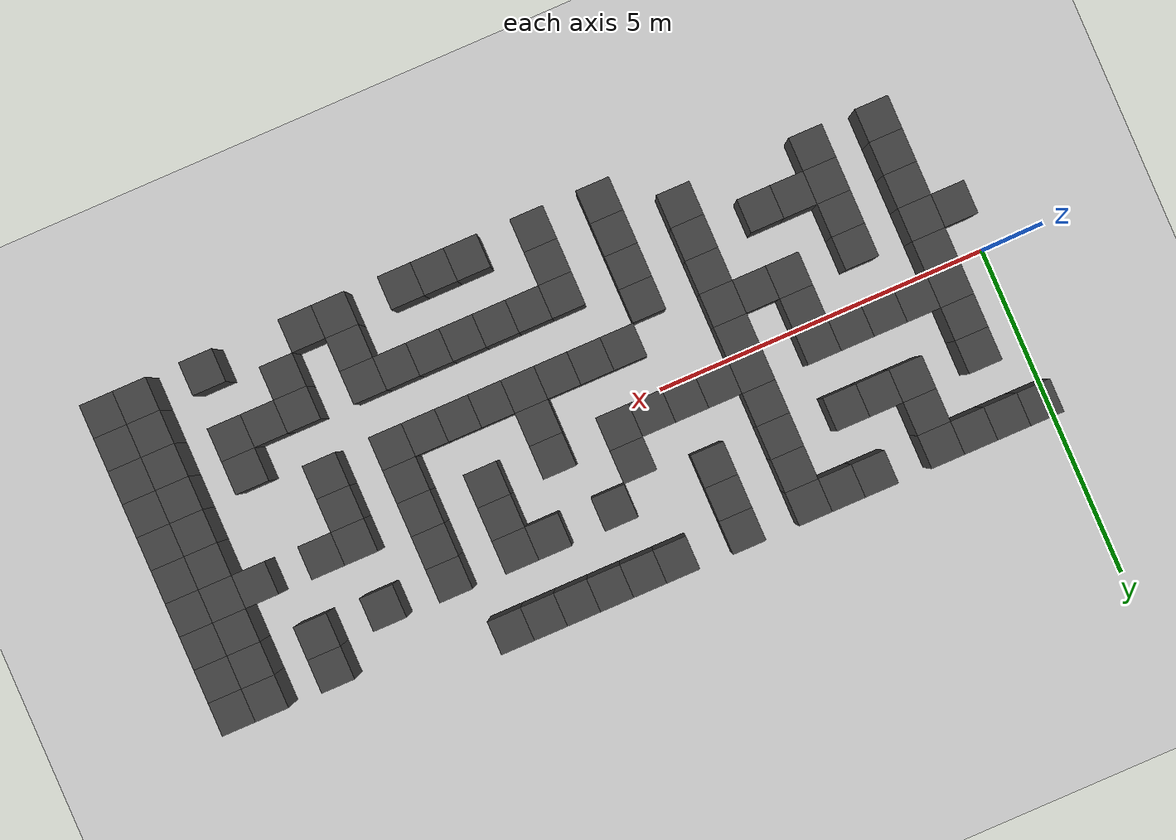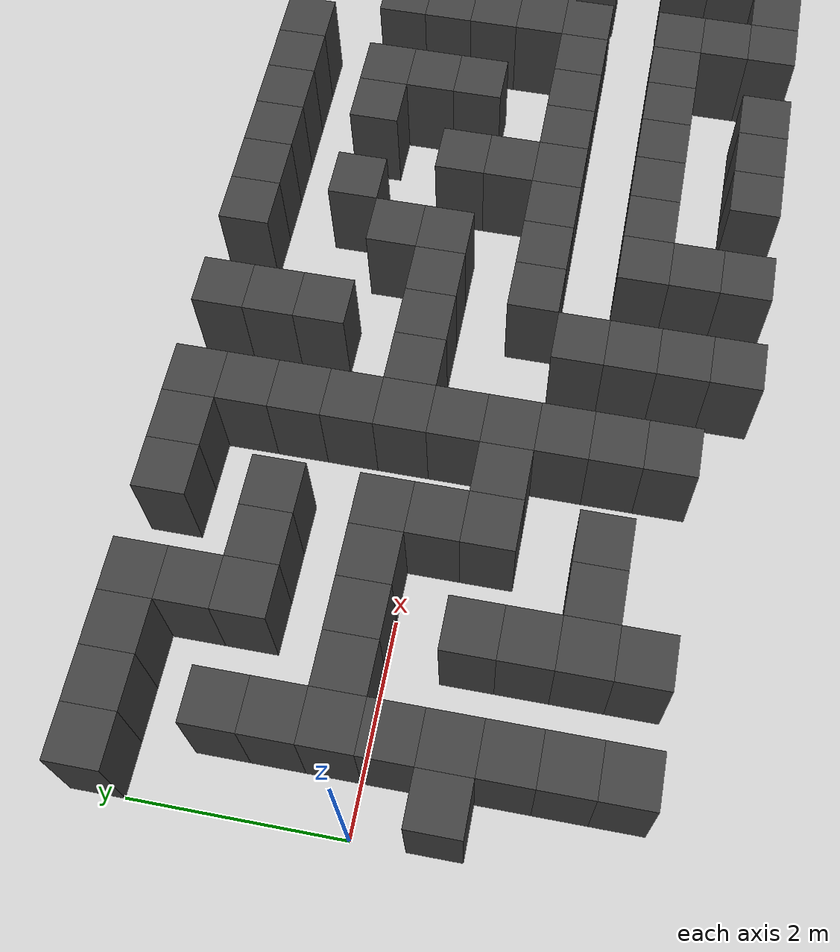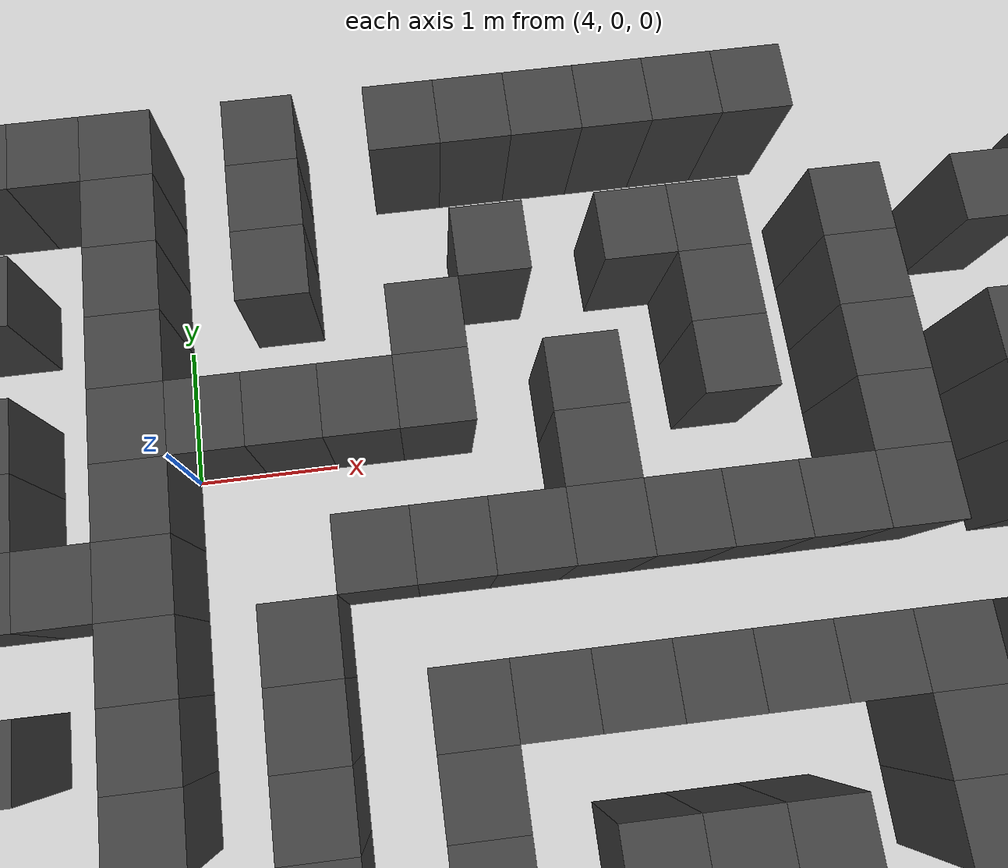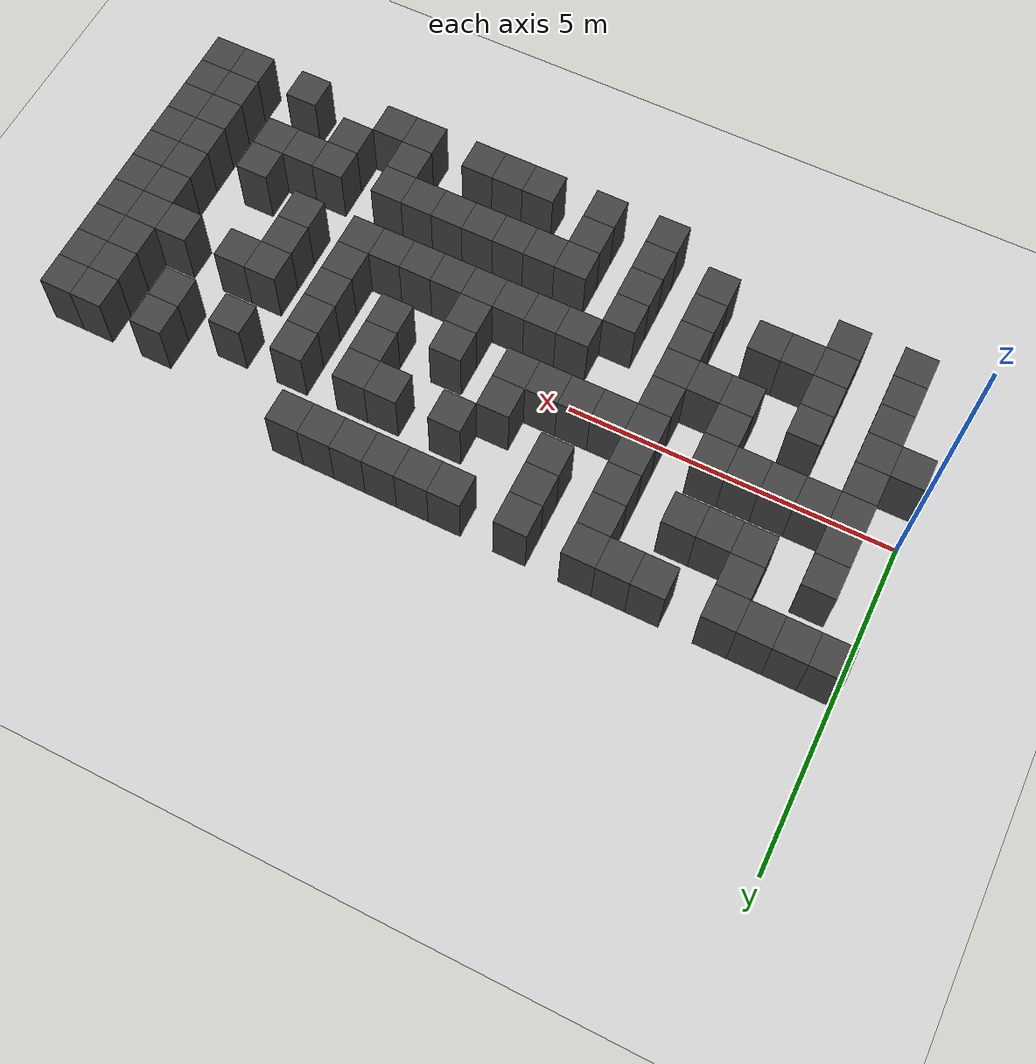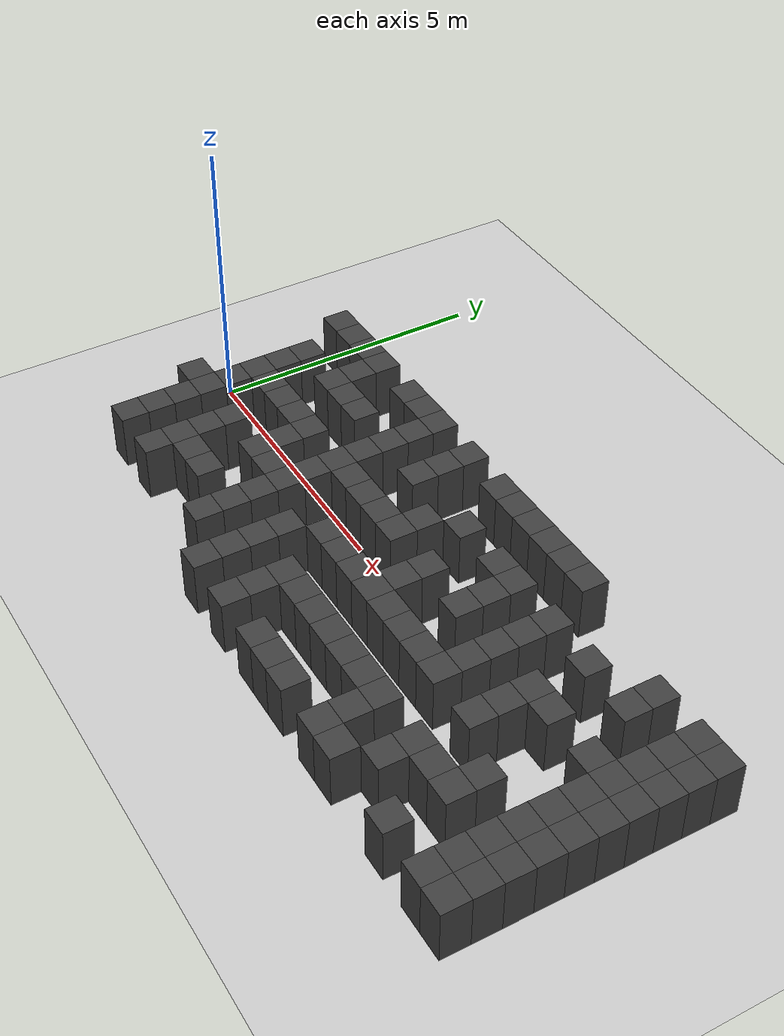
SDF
<sdf version="1.7">
 <world name="map_17503">
  <model name="ground_plane">
   <static>true</static>
   <link name="link">
    <collision name="collision">
     <geometry><plane><normal>0 0 1</normal><size>200 200</size></plane></geometry>
    </collision>
    <visual name="visual">
     <geometry><plane><normal>0 0 1</normal><size>200 200</size></plane></geometry>
     <material><ambient>0.8 0.8 0.8 1</ambient><diffuse>0.8 0.8 0.8 1</diffuse></material>
    </visual>
   </link>
  </model>
  <model name="maze_environment">
   <static>true</static>
   <link name="wall_511">
    <pose>0.250 2.250 0.500 0 0 0</pose>
    <collision name="col"><geometry><box><size>0.5 0.5 1.0</size></box></geometry></collision>
    <visual name="vis">
     <geometry><box><size>0.5 0.5 1.0</size></box></geometry>
     <material><ambient>0.15 0.15 0.15 1</ambient><diffuse>0.25 0.25 0.25 1</diffuse></material>
    </visual>
   </link>
   <link name="wall_512">
    <pose>0.750 2.250 0.500 0 0 0</pose>
    <collision name="col"><geometry><box><size>0.5 0.5 1.0</size></box></geometry></collision>
    <visual name="vis">
     <geometry><box><size>0.5 0.5 1.0</size></box></geometry>
     <material><ambient>0.15 0.15 0.15 1</ambient><diffuse>0.25 0.25 0.25 1</diffuse></material>
    </visual>
   </link>
   <link name="wall_513">
    <pose>1.250 2.250 0.500 0 0 0</pose>
    <collision name="col"><geometry><box><size>0.5 0.5 1.0</size></box></geometry></collision>
    <visual name="vis">
     <geometry><box><size>0.5 0.5 1.0</size></box></geometry>
     <material><ambient>0.15 0.15 0.15 1</ambient><diffuse>0.25 0.25 0.25 1</diffuse></material>
    </visual>
   </link>
   <link name="wall_514">
    <pose>1.750 2.250 0.500 0 0 0</pose>
    <collision name="col"><geometry><box><size>0.5 0.5 1.0</size></box></geometry></collision>
    <visual name="vis">
     <geometry><box><size>0.5 0.5 1.0</size></box></geometry>
     <material><ambient>0.15 0.15 0.15 1</ambient><diffuse>0.25 0.25 0.25 1</diffuse></material>
    </visual>
   </link>
   <link name="wall_515">
    <pose>2.750 2.250 0.500 0 0 0</pose>
    <collision name="col"><geometry><box><size>0.5 0.5 1.0</size></box></geometry></collision>
    <visual name="vis">
     <geometry><box><size>0.5 0.5 1.0</size></box></geometry>
     <material><ambient>0.15 0.15 0.15 1</ambient><diffuse>0.25 0.25 0.25 1</diffuse></material>
    </visual>
   </link>
   <link name="wall_516">
    <pose>3.250 2.250 0.500 0 0 0</pose>
    <collision name="col"><geometry><box><size>0.5 0.5 1.0</size></box></geometry></collision>
    <visual name="vis">
     <geometry><box><size>0.5 0.5 1.0</size></box></geometry>
     <material><ambient>0.15 0.15 0.15 1</ambient><diffuse>0.25 0.25 0.25 1</diffuse></material>
    </visual>
   </link>
   <link name="wall_517">
    <pose>3.750 2.250 0.500 0 0 0</pose>
    <collision name="col"><geometry><box><size>0.5 0.5 1.0</size></box></geometry></collision>
    <visual name="vis">
     <geometry><box><size>0.5 0.5 1.0</size></box></geometry>
     <material><ambient>0.15 0.15 0.15 1</ambient><diffuse>0.25 0.25 0.25 1</diffuse></material>
    </visual>
   </link>
   <link name="wall_518">
    <pose>4.750 2.250 0.500 0 0 0</pose>
    <collision name="col"><geometry><box><size>0.5 0.5 1.0</size></box></geometry></collision>
    <visual name="vis">
     <geometry><box><size>0.5 0.5 1.0</size></box></geometry>
     <material><ambient>0.15 0.15 0.15 1</ambient><diffuse>0.25 0.25 0.25 1</diffuse></material>
    </visual>
   </link>
   <link name="wall_519">
    <pose>5.750 2.250 0.500 0 0 0</pose>
    <collision name="col"><geometry><box><size>0.5 0.5 1.0</size></box></geometry></collision>
    <visual name="vis">
     <geometry><box><size>0.5 0.5 1.0</size></box></geometry>
     <material><ambient>0.15 0.15 0.15 1</ambient><diffuse>0.25 0.25 0.25 1</diffuse></material>
    </visual>
   </link>
   <link name="wall_520">
    <pose>6.250 2.250 0.500 0 0 0</pose>
    <collision name="col"><geometry><box><size>0.5 0.5 1.0</size></box></geometry></collision>
    <visual name="vis">
     <geometry><box><size>0.5 0.5 1.0</size></box></geometry>
     <material><ambient>0.15 0.15 0.15 1</ambient><diffuse>0.25 0.25 0.25 1</diffuse></material>
    </visual>
   </link>
   <link name="wall_521">
    <pose>6.750 2.250 0.500 0 0 0</pose>
    <collision name="col"><geometry><box><size>0.5 0.5 1.0</size></box></geometry></collision>
    <visual name="vis">
     <geometry><box><size>0.5 0.5 1.0</size></box></geometry>
     <material><ambient>0.15 0.15 0.15 1</ambient><diffuse>0.25 0.25 0.25 1</diffuse></material>
    </visual>
   </link>
   <link name="wall_522">
    <pose>7.250 2.250 0.500 0 0 0</pose>
    <collision name="col"><geometry><box><size>0.5 0.5 1.0</size></box></geometry></collision>
    <visual name="vis">
     <geometry><box><size>0.5 0.5 1.0</size></box></geometry>
     <material><ambient>0.15 0.15 0.15 1</ambient><diffuse>0.25 0.25 0.25 1</diffuse></material>
    </visual>
   </link>
   <link name="wall_523">
    <pose>7.750 2.250 0.500 0 0 0</pose>
    <collision name="col"><geometry><box><size>0.5 0.5 1.0</size></box></geometry></collision>
    <visual name="vis">
     <geometry><box><size>0.5 0.5 1.0</size></box></geometry>
     <material><ambient>0.15 0.15 0.15 1</ambient><diffuse>0.25 0.25 0.25 1</diffuse></material>
    </visual>
   </link>
   <link name="wall_524">
    <pose>8.250 2.250 0.500 0 0 0</pose>
    <collision name="col"><geometry><box><size>0.5 0.5 1.0</size></box></geometry></collision>
    <visual name="vis">
     <geometry><box><size>0.5 0.5 1.0</size></box></geometry>
     <material><ambient>0.15 0.15 0.15 1</ambient><diffuse>0.25 0.25 0.25 1</diffuse></material>
    </visual>
   </link>
   <link name="wall_540">
    <pose>1.750 1.750 0.500 0 0 0</pose>
    <collision name="col"><geometry><box><size>0.5 0.5 1.0</size></box></geometry></collision>
    <visual name="vis">
     <geometry><box><size>0.5 0.5 1.0</size></box></geometry>
     <material><ambient>0.15 0.15 0.15 1</ambient><diffuse>0.25 0.25 0.25 1</diffuse></material>
    </visual>
   </link>
   <link name="wall_541">
    <pose>3.750 1.750 0.500 0 0 0</pose>
    <collision name="col"><geometry><box><size>0.5 0.5 1.0</size></box></geometry></collision>
    <visual name="vis">
     <geometry><box><size>0.5 0.5 1.0</size></box></geometry>
     <material><ambient>0.15 0.15 0.15 1</ambient><diffuse>0.25 0.25 0.25 1</diffuse></material>
    </visual>
   </link>
   <link name="wall_542">
    <pose>4.750 1.750 0.500 0 0 0</pose>
    <collision name="col"><geometry><box><size>0.5 0.5 1.0</size></box></geometry></collision>
    <visual name="vis">
     <geometry><box><size>0.5 0.5 1.0</size></box></geometry>
     <material><ambient>0.15 0.15 0.15 1</ambient><diffuse>0.25 0.25 0.25 1</diffuse></material>
    </visual>
   </link>
   <link name="wall_543">
    <pose>10.750 1.750 0.500 0 0 0</pose>
    <collision name="col"><geometry><box><size>0.5 0.5 1.0</size></box></geometry></collision>
    <visual name="vis">
     <geometry><box><size>0.5 0.5 1.0</size></box></geometry>
     <material><ambient>0.15 0.15 0.15 1</ambient><diffuse>0.25 0.25 0.25 1</diffuse></material>
    </visual>
   </link>
   <link name="wall_544">
    <pose>11.750 1.750 0.500 0 0 0</pose>
    <collision name="col"><geometry><box><size>0.5 0.5 1.0</size></box></geometry></collision>
    <visual name="vis">
     <geometry><box><size>0.5 0.5 1.0</size></box></geometry>
     <material><ambient>0.15 0.15 0.15 1</ambient><diffuse>0.25 0.25 0.25 1</diffuse></material>
    </visual>
   </link>
   <link name="wall_545">
    <pose>12.250 1.750 0.500 0 0 0</pose>
    <collision name="col"><geometry><box><size>0.5 0.5 1.0</size></box></geometry></collision>
    <visual name="vis">
     <geometry><box><size>0.5 0.5 1.0</size></box></geometry>
     <material><ambient>0.15 0.15 0.15 1</ambient><diffuse>0.25 0.25 0.25 1</diffuse></material>
    </visual>
   </link>
   <link name="wall_562">
    <pose>0.750 1.250 0.500 0 0 0</pose>
    <collision name="col"><geometry><box><size>0.5 0.5 1.0</size></box></geometry></collision>
    <visual name="vis">
     <geometry><box><size>0.5 0.5 1.0</size></box></geometry>
     <material><ambient>0.15 0.15 0.15 1</ambient><diffuse>0.25 0.25 0.25 1</diffuse></material>
    </visual>
   </link>
   <link name="wall_563">
    <pose>1.750 1.250 0.500 0 0 0</pose>
    <collision name="col"><geometry><box><size>0.5 0.5 1.0</size></box></geometry></collision>
    <visual name="vis">
     <geometry><box><size>0.5 0.5 1.0</size></box></geometry>
     <material><ambient>0.15 0.15 0.15 1</ambient><diffuse>0.25 0.25 0.25 1</diffuse></material>
    </visual>
   </link>
   <link name="wall_564">
    <pose>2.250 1.250 0.500 0 0 0</pose>
    <collision name="col"><geometry><box><size>0.5 0.5 1.0</size></box></geometry></collision>
    <visual name="vis">
     <geometry><box><size>0.5 0.5 1.0</size></box></geometry>
     <material><ambient>0.15 0.15 0.15 1</ambient><diffuse>0.25 0.25 0.25 1</diffuse></material>
    </visual>
   </link>
   <link name="wall_565">
    <pose>2.750 1.250 0.500 0 0 0</pose>
    <collision name="col"><geometry><box><size>0.5 0.5 1.0</size></box></geometry></collision>
    <visual name="vis">
     <geometry><box><size>0.5 0.5 1.0</size></box></geometry>
     <material><ambient>0.15 0.15 0.15 1</ambient><diffuse>0.25 0.25 0.25 1</diffuse></material>
    </visual>
   </link>
   <link name="wall_566">
    <pose>3.750 1.250 0.500 0 0 0</pose>
    <collision name="col"><geometry><box><size>0.5 0.5 1.0</size></box></geometry></collision>
    <visual name="vis">
     <geometry><box><size>0.5 0.5 1.0</size></box></geometry>
     <material><ambient>0.15 0.15 0.15 1</ambient><diffuse>0.25 0.25 0.25 1</diffuse></material>
    </visual>
   </link>
   <link name="wall_567">
    <pose>4.750 1.250 0.500 0 0 0</pose>
    <collision name="col"><geometry><box><size>0.5 0.5 1.0</size></box></geometry></collision>
    <visual name="vis">
     <geometry><box><size>0.5 0.5 1.0</size></box></geometry>
     <material><ambient>0.15 0.15 0.15 1</ambient><diffuse>0.25 0.25 0.25 1</diffuse></material>
    </visual>
   </link>
   <link name="wall_568">
    <pose>6.250 1.250 0.500 0 0 0</pose>
    <collision name="col"><geometry><box><size>0.5 0.5 1.0</size></box></geometry></collision>
    <visual name="vis">
     <geometry><box><size>0.5 0.5 1.0</size></box></geometry>
     <material><ambient>0.15 0.15 0.15 1</ambient><diffuse>0.25 0.25 0.25 1</diffuse></material>
    </visual>
   </link>
   <link name="wall_569">
    <pose>7.250 1.250 0.500 0 0 0</pose>
    <collision name="col"><geometry><box><size>0.5 0.5 1.0</size></box></geometry></collision>
    <visual name="vis">
     <geometry><box><size>0.5 0.5 1.0</size></box></geometry>
     <material><ambient>0.15 0.15 0.15 1</ambient><diffuse>0.25 0.25 0.25 1</diffuse></material>
    </visual>
   </link>
   <link name="wall_570">
    <pose>7.750 1.250 0.500 0 0 0</pose>
    <collision name="col"><geometry><box><size>0.5 0.5 1.0</size></box></geometry></collision>
    <visual name="vis">
     <geometry><box><size>0.5 0.5 1.0</size></box></geometry>
     <material><ambient>0.15 0.15 0.15 1</ambient><diffuse>0.25 0.25 0.25 1</diffuse></material>
    </visual>
   </link>
   <link name="wall_571">
    <pose>8.750 1.250 0.500 0 0 0</pose>
    <collision name="col"><geometry><box><size>0.5 0.5 1.0</size></box></geometry></collision>
    <visual name="vis">
     <geometry><box><size>0.5 0.5 1.0</size></box></geometry>
     <material><ambient>0.15 0.15 0.15 1</ambient><diffuse>0.25 0.25 0.25 1</diffuse></material>
    </visual>
   </link>
   <link name="wall_572">
    <pose>9.750 1.250 0.500 0 0 0</pose>
    <collision name="col"><geometry><box><size>0.5 0.5 1.0</size></box></geometry></collision>
    <visual name="vis">
     <geometry><box><size>0.5 0.5 1.0</size></box></geometry>
     <material><ambient>0.15 0.15 0.15 1</ambient><diffuse>0.25 0.25 0.25 1</diffuse></material>
    </visual>
   </link>
   <link name="wall_573">
    <pose>10.750 1.250 0.500 0 0 0</pose>
    <collision name="col"><geometry><box><size>0.5 0.5 1.0</size></box></geometry></collision>
    <visual name="vis">
     <geometry><box><size>0.5 0.5 1.0</size></box></geometry>
     <material><ambient>0.15 0.15 0.15 1</ambient><diffuse>0.25 0.25 0.25 1</diffuse></material>
    </visual>
   </link>
   <link name="wall_574">
    <pose>11.750 1.250 0.500 0 0 0</pose>
    <collision name="col"><geometry><box><size>0.5 0.5 1.0</size></box></geometry></collision>
    <visual name="vis">
     <geometry><box><size>0.5 0.5 1.0</size></box></geometry>
     <material><ambient>0.15 0.15 0.15 1</ambient><diffuse>0.25 0.25 0.25 1</diffuse></material>
    </visual>
   </link>
   <link name="wall_575">
    <pose>12.250 1.250 0.500 0 0 0</pose>
    <collision name="col"><geometry><box><size>0.5 0.5 1.0</size></box></geometry></collision>
    <visual name="vis">
     <geometry><box><size>0.5 0.5 1.0</size></box></geometry>
     <material><ambient>0.15 0.15 0.15 1</ambient><diffuse>0.25 0.25 0.25 1</diffuse></material>
    </visual>
   </link>
   <link name="wall_584">
    <pose>0.750 0.750 0.500 0 0 0</pose>
    <collision name="col"><geometry><box><size>0.5 0.5 1.0</size></box></geometry></collision>
    <visual name="vis">
     <geometry><box><size>0.5 0.5 1.0</size></box></geometry>
     <material><ambient>0.15 0.15 0.15 1</ambient><diffuse>0.25 0.25 0.25 1</diffuse></material>
    </visual>
   </link>
   <link name="wall_585">
    <pose>3.750 0.750 0.500 0 0 0</pose>
    <collision name="col"><geometry><box><size>0.5 0.5 1.0</size></box></geometry></collision>
    <visual name="vis">
     <geometry><box><size>0.5 0.5 1.0</size></box></geometry>
     <material><ambient>0.15 0.15 0.15 1</ambient><diffuse>0.25 0.25 0.25 1</diffuse></material>
    </visual>
   </link>
   <link name="wall_586">
    <pose>5.750 0.750 0.500 0 0 0</pose>
    <collision name="col"><geometry><box><size>0.5 0.5 1.0</size></box></geometry></collision>
    <visual name="vis">
     <geometry><box><size>0.5 0.5 1.0</size></box></geometry>
     <material><ambient>0.15 0.15 0.15 1</ambient><diffuse>0.25 0.25 0.25 1</diffuse></material>
    </visual>
   </link>
   <link name="wall_587">
    <pose>7.750 0.750 0.500 0 0 0</pose>
    <collision name="col"><geometry><box><size>0.5 0.5 1.0</size></box></geometry></collision>
    <visual name="vis">
     <geometry><box><size>0.5 0.5 1.0</size></box></geometry>
     <material><ambient>0.15 0.15 0.15 1</ambient><diffuse>0.25 0.25 0.25 1</diffuse></material>
    </visual>
   </link>
   <link name="wall_588">
    <pose>8.750 0.750 0.500 0 0 0</pose>
    <collision name="col"><geometry><box><size>0.5 0.5 1.0</size></box></geometry></collision>
    <visual name="vis">
     <geometry><box><size>0.5 0.5 1.0</size></box></geometry>
     <material><ambient>0.15 0.15 0.15 1</ambient><diffuse>0.25 0.25 0.25 1</diffuse></material>
    </visual>
   </link>
   <link name="wall_589">
    <pose>11.750 0.750 0.500 0 0 0</pose>
    <collision name="col"><geometry><box><size>0.5 0.5 1.0</size></box></geometry></collision>
    <visual name="vis">
     <geometry><box><size>0.5 0.5 1.0</size></box></geometry>
     <material><ambient>0.15 0.15 0.15 1</ambient><diffuse>0.25 0.25 0.25 1</diffuse></material>
    </visual>
   </link>
   <link name="wall_590">
    <pose>12.250 0.750 0.500 0 0 0</pose>
    <collision name="col"><geometry><box><size>0.5 0.5 1.0</size></box></geometry></collision>
    <visual name="vis">
     <geometry><box><size>0.5 0.5 1.0</size></box></geometry>
     <material><ambient>0.15 0.15 0.15 1</ambient><diffuse>0.25 0.25 0.25 1</diffuse></material>
    </visual>
   </link>
   <link name="wall_610">
    <pose>0.750 0.250 0.500 0 0 0</pose>
    <collision name="col"><geometry><box><size>0.5 0.5 1.0</size></box></geometry></collision>
    <visual name="vis">
     <geometry><box><size>0.5 0.5 1.0</size></box></geometry>
     <material><ambient>0.15 0.15 0.15 1</ambient><diffuse>0.25 0.25 0.25 1</diffuse></material>
    </visual>
   </link>
   <link name="wall_611">
    <pose>1.250 0.250 0.500 0 0 0</pose>
    <collision name="col"><geometry><box><size>0.5 0.5 1.0</size></box></geometry></collision>
    <visual name="vis">
     <geometry><box><size>0.5 0.5 1.0</size></box></geometry>
     <material><ambient>0.15 0.15 0.15 1</ambient><diffuse>0.25 0.25 0.25 1</diffuse></material>
    </visual>
   </link>
   <link name="wall_612">
    <pose>1.750 0.250 0.500 0 0 0</pose>
    <collision name="col"><geometry><box><size>0.5 0.5 1.0</size></box></geometry></collision>
    <visual name="vis">
     <geometry><box><size>0.5 0.5 1.0</size></box></geometry>
     <material><ambient>0.15 0.15 0.15 1</ambient><diffuse>0.25 0.25 0.25 1</diffuse></material>
    </visual>
   </link>
   <link name="wall_613">
    <pose>2.250 0.250 0.500 0 0 0</pose>
    <collision name="col"><geometry><box><size>0.5 0.5 1.0</size></box></geometry></collision>
    <visual name="vis">
     <geometry><box><size>0.5 0.5 1.0</size></box></geometry>
     <material><ambient>0.15 0.15 0.15 1</ambient><diffuse>0.25 0.25 0.25 1</diffuse></material>
    </visual>
   </link>
   <link name="wall_614">
    <pose>2.750 0.250 0.500 0 0 0</pose>
    <collision name="col"><geometry><box><size>0.5 0.5 1.0</size></box></geometry></collision>
    <visual name="vis">
     <geometry><box><size>0.5 0.5 1.0</size></box></geometry>
     <material><ambient>0.15 0.15 0.15 1</ambient><diffuse>0.25 0.25 0.25 1</diffuse></material>
    </visual>
   </link>
   <link name="wall_615">
    <pose>3.750 0.250 0.500 0 0 0</pose>
    <collision name="col"><geometry><box><size>0.5 0.5 1.0</size></box></geometry></collision>
    <visual name="vis">
     <geometry><box><size>0.5 0.5 1.0</size></box></geometry>
     <material><ambient>0.15 0.15 0.15 1</ambient><diffuse>0.25 0.25 0.25 1</diffuse></material>
    </visual>
   </link>
   <link name="wall_616">
    <pose>4.250 0.250 0.500 0 0 0</pose>
    <collision name="col"><geometry><box><size>0.5 0.5 1.0</size></box></geometry></collision>
    <visual name="vis">
     <geometry><box><size>0.5 0.5 1.0</size></box></geometry>
     <material><ambient>0.15 0.15 0.15 1</ambient><diffuse>0.25 0.25 0.25 1</diffuse></material>
    </visual>
   </link>
   <link name="wall_617">
    <pose>4.750 0.250 0.500 0 0 0</pose>
    <collision name="col"><geometry><box><size>0.5 0.5 1.0</size></box></geometry></collision>
    <visual name="vis">
     <geometry><box><size>0.5 0.5 1.0</size></box></geometry>
     <material><ambient>0.15 0.15 0.15 1</ambient><diffuse>0.25 0.25 0.25 1</diffuse></material>
    </visual>
   </link>
   <link name="wall_618">
    <pose>5.250 0.250 0.500 0 0 0</pose>
    <collision name="col"><geometry><box><size>0.5 0.5 1.0</size></box></geometry></collision>
    <visual name="vis">
     <geometry><box><size>0.5 0.5 1.0</size></box></geometry>
     <material><ambient>0.15 0.15 0.15 1</ambient><diffuse>0.25 0.25 0.25 1</diffuse></material>
    </visual>
   </link>
   <link name="wall_619">
    <pose>5.750 0.250 0.500 0 0 0</pose>
    <collision name="col"><geometry><box><size>0.5 0.5 1.0</size></box></geometry></collision>
    <visual name="vis">
     <geometry><box><size>0.5 0.5 1.0</size></box></geometry>
     <material><ambient>0.15 0.15 0.15 1</ambient><diffuse>0.25 0.25 0.25 1</diffuse></material>
    </visual>
   </link>
   <link name="wall_620">
    <pose>6.750 0.250 0.500 0 0 0</pose>
    <collision name="col"><geometry><box><size>0.5 0.5 1.0</size></box></geometry></collision>
    <visual name="vis">
     <geometry><box><size>0.5 0.5 1.0</size></box></geometry>
     <material><ambient>0.15 0.15 0.15 1</ambient><diffuse>0.25 0.25 0.25 1</diffuse></material>
    </visual>
   </link>
   <link name="wall_621">
    <pose>7.750 0.250 0.500 0 0 0</pose>
    <collision name="col"><geometry><box><size>0.5 0.5 1.0</size></box></geometry></collision>
    <visual name="vis">
     <geometry><box><size>0.5 0.5 1.0</size></box></geometry>
     <material><ambient>0.15 0.15 0.15 1</ambient><diffuse>0.25 0.25 0.25 1</diffuse></material>
    </visual>
   </link>
   <link name="wall_622">
    <pose>8.750 0.250 0.500 0 0 0</pose>
    <collision name="col"><geometry><box><size>0.5 0.5 1.0</size></box></geometry></collision>
    <visual name="vis">
     <geometry><box><size>0.5 0.5 1.0</size></box></geometry>
     <material><ambient>0.15 0.15 0.15 1</ambient><diffuse>0.25 0.25 0.25 1</diffuse></material>
    </visual>
   </link>
   <link name="wall_623">
    <pose>9.750 0.250 0.500 0 0 0</pose>
    <collision name="col"><geometry><box><size>0.5 0.5 1.0</size></box></geometry></collision>
    <visual name="vis">
     <geometry><box><size>0.5 0.5 1.0</size></box></geometry>
     <material><ambient>0.15 0.15 0.15 1</ambient><diffuse>0.25 0.25 0.25 1</diffuse></material>
    </visual>
   </link>
   <link name="wall_624">
    <pose>10.250 0.250 0.500 0 0 0</pose>
    <collision name="col"><geometry><box><size>0.5 0.5 1.0</size></box></geometry></collision>
    <visual name="vis">
     <geometry><box><size>0.5 0.5 1.0</size></box></geometry>
     <material><ambient>0.15 0.15 0.15 1</ambient><diffuse>0.25 0.25 0.25 1</diffuse></material>
    </visual>
   </link>
   <link name="wall_625">
    <pose>11.250 0.250 0.500 0 0 0</pose>
    <collision name="col"><geometry><box><size>0.5 0.5 1.0</size></box></geometry></collision>
    <visual name="vis">
     <geometry><box><size>0.5 0.5 1.0</size></box></geometry>
     <material><ambient>0.15 0.15 0.15 1</ambient><diffuse>0.25 0.25 0.25 1</diffuse></material>
    </visual>
   </link>
   <link name="wall_626">
    <pose>11.750 0.250 0.500 0 0 0</pose>
    <collision name="col"><geometry><box><size>0.5 0.5 1.0</size></box></geometry></collision>
    <visual name="vis">
     <geometry><box><size>0.5 0.5 1.0</size></box></geometry>
     <material><ambient>0.15 0.15 0.15 1</ambient><diffuse>0.25 0.25 0.25 1</diffuse></material>
    </visual>
   </link>
   <link name="wall_627">
    <pose>12.250 0.250 0.500 0 0 0</pose>
    <collision name="col"><geometry><box><size>0.5 0.5 1.0</size></box></geometry></collision>
    <visual name="vis">
     <geometry><box><size>0.5 0.5 1.0</size></box></geometry>
     <material><ambient>0.15 0.15 0.15 1</ambient><diffuse>0.25 0.25 0.25 1</diffuse></material>
    </visual>
   </link>
   <link name="wall_635">
    <pose>0.750 -0.250 0.500 0 0 0</pose>
    <collision name="col"><geometry><box><size>0.5 0.5 1.0</size></box></geometry></collision>
    <visual name="vis">
     <geometry><box><size>0.5 0.5 1.0</size></box></geometry>
     <material><ambient>0.15 0.15 0.15 1</ambient><diffuse>0.25 0.25 0.25 1</diffuse></material>
    </visual>
   </link>
   <link name="wall_636">
    <pose>2.750 -0.250 0.500 0 0 0</pose>
    <collision name="col"><geometry><box><size>0.5 0.5 1.0</size></box></geometry></collision>
    <visual name="vis">
     <geometry><box><size>0.5 0.5 1.0</size></box></geometry>
     <material><ambient>0.15 0.15 0.15 1</ambient><diffuse>0.25 0.25 0.25 1</diffuse></material>
    </visual>
   </link>
   <link name="wall_637">
    <pose>3.750 -0.250 0.500 0 0 0</pose>
    <collision name="col"><geometry><box><size>0.5 0.5 1.0</size></box></geometry></collision>
    <visual name="vis">
     <geometry><box><size>0.5 0.5 1.0</size></box></geometry>
     <material><ambient>0.15 0.15 0.15 1</ambient><diffuse>0.25 0.25 0.25 1</diffuse></material>
    </visual>
   </link>
   <link name="wall_638">
    <pose>6.750 -0.250 0.500 0 0 0</pose>
    <collision name="col"><geometry><box><size>0.5 0.5 1.0</size></box></geometry></collision>
    <visual name="vis">
     <geometry><box><size>0.5 0.5 1.0</size></box></geometry>
     <material><ambient>0.15 0.15 0.15 1</ambient><diffuse>0.25 0.25 0.25 1</diffuse></material>
    </visual>
   </link>
   <link name="wall_639">
    <pose>8.750 -0.250 0.500 0 0 0</pose>
    <collision name="col"><geometry><box><size>0.5 0.5 1.0</size></box></geometry></collision>
    <visual name="vis">
     <geometry><box><size>0.5 0.5 1.0</size></box></geometry>
     <material><ambient>0.15 0.15 0.15 1</ambient><diffuse>0.25 0.25 0.25 1</diffuse></material>
    </visual>
   </link>
   <link name="wall_640">
    <pose>9.750 -0.250 0.500 0 0 0</pose>
    <collision name="col"><geometry><box><size>0.5 0.5 1.0</size></box></geometry></collision>
    <visual name="vis">
     <geometry><box><size>0.5 0.5 1.0</size></box></geometry>
     <material><ambient>0.15 0.15 0.15 1</ambient><diffuse>0.25 0.25 0.25 1</diffuse></material>
    </visual>
   </link>
   <link name="wall_641">
    <pose>11.750 -0.250 0.500 0 0 0</pose>
    <collision name="col"><geometry><box><size>0.5 0.5 1.0</size></box></geometry></collision>
    <visual name="vis">
     <geometry><box><size>0.5 0.5 1.0</size></box></geometry>
     <material><ambient>0.15 0.15 0.15 1</ambient><diffuse>0.25 0.25 0.25 1</diffuse></material>
    </visual>
   </link>
   <link name="wall_642">
    <pose>12.250 -0.250 0.500 0 0 0</pose>
    <collision name="col"><geometry><box><size>0.5 0.5 1.0</size></box></geometry></collision>
    <visual name="vis">
     <geometry><box><size>0.5 0.5 1.0</size></box></geometry>
     <material><ambient>0.15 0.15 0.15 1</ambient><diffuse>0.25 0.25 0.25 1</diffuse></material>
    </visual>
   </link>
   <link name="wall_660">
    <pose>0.250 -0.750 0.500 0 0 0</pose>
    <collision name="col"><geometry><box><size>0.5 0.5 1.0</size></box></geometry></collision>
    <visual name="vis">
     <geometry><box><size>0.5 0.5 1.0</size></box></geometry>
     <material><ambient>0.15 0.15 0.15 1</ambient><diffuse>0.25 0.25 0.25 1</diffuse></material>
    </visual>
   </link>
   <link name="wall_661">
    <pose>0.750 -0.750 0.500 0 0 0</pose>
    <collision name="col"><geometry><box><size>0.5 0.5 1.0</size></box></geometry></collision>
    <visual name="vis">
     <geometry><box><size>0.5 0.5 1.0</size></box></geometry>
     <material><ambient>0.15 0.15 0.15 1</ambient><diffuse>0.25 0.25 0.25 1</diffuse></material>
    </visual>
   </link>
   <link name="wall_662">
    <pose>1.750 -0.750 0.500 0 0 0</pose>
    <collision name="col"><geometry><box><size>0.5 0.5 1.0</size></box></geometry></collision>
    <visual name="vis">
     <geometry><box><size>0.5 0.5 1.0</size></box></geometry>
     <material><ambient>0.15 0.15 0.15 1</ambient><diffuse>0.25 0.25 0.25 1</diffuse></material>
    </visual>
   </link>
   <link name="wall_663">
    <pose>2.750 -0.750 0.500 0 0 0</pose>
    <collision name="col"><geometry><box><size>0.5 0.5 1.0</size></box></geometry></collision>
    <visual name="vis">
     <geometry><box><size>0.5 0.5 1.0</size></box></geometry>
     <material><ambient>0.15 0.15 0.15 1</ambient><diffuse>0.25 0.25 0.25 1</diffuse></material>
    </visual>
   </link>
   <link name="wall_664">
    <pose>3.250 -0.750 0.500 0 0 0</pose>
    <collision name="col"><geometry><box><size>0.5 0.5 1.0</size></box></geometry></collision>
    <visual name="vis">
     <geometry><box><size>0.5 0.5 1.0</size></box></geometry>
     <material><ambient>0.15 0.15 0.15 1</ambient><diffuse>0.25 0.25 0.25 1</diffuse></material>
    </visual>
   </link>
   <link name="wall_665">
    <pose>3.750 -0.750 0.500 0 0 0</pose>
    <collision name="col"><geometry><box><size>0.5 0.5 1.0</size></box></geometry></collision>
    <visual name="vis">
     <geometry><box><size>0.5 0.5 1.0</size></box></geometry>
     <material><ambient>0.15 0.15 0.15 1</ambient><diffuse>0.25 0.25 0.25 1</diffuse></material>
    </visual>
   </link>
   <link name="wall_666">
    <pose>5.250 -0.750 0.500 0 0 0</pose>
    <collision name="col"><geometry><box><size>0.5 0.5 1.0</size></box></geometry></collision>
    <visual name="vis">
     <geometry><box><size>0.5 0.5 1.0</size></box></geometry>
     <material><ambient>0.15 0.15 0.15 1</ambient><diffuse>0.25 0.25 0.25 1</diffuse></material>
    </visual>
   </link>
   <link name="wall_667">
    <pose>5.750 -0.750 0.500 0 0 0</pose>
    <collision name="col"><geometry><box><size>0.5 0.5 1.0</size></box></geometry></collision>
    <visual name="vis">
     <geometry><box><size>0.5 0.5 1.0</size></box></geometry>
     <material><ambient>0.15 0.15 0.15 1</ambient><diffuse>0.25 0.25 0.25 1</diffuse></material>
    </visual>
   </link>
   <link name="wall_668">
    <pose>6.250 -0.750 0.500 0 0 0</pose>
    <collision name="col"><geometry><box><size>0.5 0.5 1.0</size></box></geometry></collision>
    <visual name="vis">
     <geometry><box><size>0.5 0.5 1.0</size></box></geometry>
     <material><ambient>0.15 0.15 0.15 1</ambient><diffuse>0.25 0.25 0.25 1</diffuse></material>
    </visual>
   </link>
   <link name="wall_669">
    <pose>6.750 -0.750 0.500 0 0 0</pose>
    <collision name="col"><geometry><box><size>0.5 0.5 1.0</size></box></geometry></collision>
    <visual name="vis">
     <geometry><box><size>0.5 0.5 1.0</size></box></geometry>
     <material><ambient>0.15 0.15 0.15 1</ambient><diffuse>0.25 0.25 0.25 1</diffuse></material>
    </visual>
   </link>
   <link name="wall_670">
    <pose>7.250 -0.750 0.500 0 0 0</pose>
    <collision name="col"><geometry><box><size>0.5 0.5 1.0</size></box></geometry></collision>
    <visual name="vis">
     <geometry><box><size>0.5 0.5 1.0</size></box></geometry>
     <material><ambient>0.15 0.15 0.15 1</ambient><diffuse>0.25 0.25 0.25 1</diffuse></material>
    </visual>
   </link>
   <link name="wall_671">
    <pose>7.750 -0.750 0.500 0 0 0</pose>
    <collision name="col"><geometry><box><size>0.5 0.5 1.0</size></box></geometry></collision>
    <visual name="vis">
     <geometry><box><size>0.5 0.5 1.0</size></box></geometry>
     <material><ambient>0.15 0.15 0.15 1</ambient><diffuse>0.25 0.25 0.25 1</diffuse></material>
    </visual>
   </link>
   <link name="wall_672">
    <pose>8.250 -0.750 0.500 0 0 0</pose>
    <collision name="col"><geometry><box><size>0.5 0.5 1.0</size></box></geometry></collision>
    <visual name="vis">
     <geometry><box><size>0.5 0.5 1.0</size></box></geometry>
     <material><ambient>0.15 0.15 0.15 1</ambient><diffuse>0.25 0.25 0.25 1</diffuse></material>
    </visual>
   </link>
   <link name="wall_673">
    <pose>8.750 -0.750 0.500 0 0 0</pose>
    <collision name="col"><geometry><box><size>0.5 0.5 1.0</size></box></geometry></collision>
    <visual name="vis">
     <geometry><box><size>0.5 0.5 1.0</size></box></geometry>
     <material><ambient>0.15 0.15 0.15 1</ambient><diffuse>0.25 0.25 0.25 1</diffuse></material>
    </visual>
   </link>
   <link name="wall_674">
    <pose>9.750 -0.750 0.500 0 0 0</pose>
    <collision name="col"><geometry><box><size>0.5 0.5 1.0</size></box></geometry></collision>
    <visual name="vis">
     <geometry><box><size>0.5 0.5 1.0</size></box></geometry>
     <material><ambient>0.15 0.15 0.15 1</ambient><diffuse>0.25 0.25 0.25 1</diffuse></material>
    </visual>
   </link>
   <link name="wall_675">
    <pose>11.750 -0.750 0.500 0 0 0</pose>
    <collision name="col"><geometry><box><size>0.5 0.5 1.0</size></box></geometry></collision>
    <visual name="vis">
     <geometry><box><size>0.5 0.5 1.0</size></box></geometry>
     <material><ambient>0.15 0.15 0.15 1</ambient><diffuse>0.25 0.25 0.25 1</diffuse></material>
    </visual>
   </link>
   <link name="wall_676">
    <pose>12.250 -0.750 0.500 0 0 0</pose>
    <collision name="col"><geometry><box><size>0.5 0.5 1.0</size></box></geometry></collision>
    <visual name="vis">
     <geometry><box><size>0.5 0.5 1.0</size></box></geometry>
     <material><ambient>0.15 0.15 0.15 1</ambient><diffuse>0.25 0.25 0.25 1</diffuse></material>
    </visual>
   </link>
   <link name="wall_684">
    <pose>0.750 -1.250 0.500 0 0 0</pose>
    <collision name="col"><geometry><box><size>0.5 0.5 1.0</size></box></geometry></collision>
    <visual name="vis">
     <geometry><box><size>0.5 0.5 1.0</size></box></geometry>
     <material><ambient>0.15 0.15 0.15 1</ambient><diffuse>0.25 0.25 0.25 1</diffuse></material>
    </visual>
   </link>
   <link name="wall_685">
    <pose>1.750 -1.250 0.500 0 0 0</pose>
    <collision name="col"><geometry><box><size>0.5 0.5 1.0</size></box></geometry></collision>
    <visual name="vis">
     <geometry><box><size>0.5 0.5 1.0</size></box></geometry>
     <material><ambient>0.15 0.15 0.15 1</ambient><diffuse>0.25 0.25 0.25 1</diffuse></material>
    </visual>
   </link>
   <link name="wall_686">
    <pose>3.750 -1.250 0.500 0 0 0</pose>
    <collision name="col"><geometry><box><size>0.5 0.5 1.0</size></box></geometry></collision>
    <visual name="vis">
     <geometry><box><size>0.5 0.5 1.0</size></box></geometry>
     <material><ambient>0.15 0.15 0.15 1</ambient><diffuse>0.25 0.25 0.25 1</diffuse></material>
    </visual>
   </link>
   <link name="wall_687">
    <pose>4.750 -1.250 0.500 0 0 0</pose>
    <collision name="col"><geometry><box><size>0.5 0.5 1.0</size></box></geometry></collision>
    <visual name="vis">
     <geometry><box><size>0.5 0.5 1.0</size></box></geometry>
     <material><ambient>0.15 0.15 0.15 1</ambient><diffuse>0.25 0.25 0.25 1</diffuse></material>
    </visual>
   </link>
   <link name="wall_688">
    <pose>10.750 -1.250 0.500 0 0 0</pose>
    <collision name="col"><geometry><box><size>0.5 0.5 1.0</size></box></geometry></collision>
    <visual name="vis">
     <geometry><box><size>0.5 0.5 1.0</size></box></geometry>
     <material><ambient>0.15 0.15 0.15 1</ambient><diffuse>0.25 0.25 0.25 1</diffuse></material>
    </visual>
   </link>
   <link name="wall_689">
    <pose>11.750 -1.250 0.500 0 0 0</pose>
    <collision name="col"><geometry><box><size>0.5 0.5 1.0</size></box></geometry></collision>
    <visual name="vis">
     <geometry><box><size>0.5 0.5 1.0</size></box></geometry>
     <material><ambient>0.15 0.15 0.15 1</ambient><diffuse>0.25 0.25 0.25 1</diffuse></material>
    </visual>
   </link>
   <link name="wall_690">
    <pose>12.250 -1.250 0.500 0 0 0</pose>
    <collision name="col"><geometry><box><size>0.5 0.5 1.0</size></box></geometry></collision>
    <visual name="vis">
     <geometry><box><size>0.5 0.5 1.0</size></box></geometry>
     <material><ambient>0.15 0.15 0.15 1</ambient><diffuse>0.25 0.25 0.25 1</diffuse></material>
    </visual>
   </link>
   <link name="wall_708">
    <pose>0.750 -1.750 0.500 0 0 0</pose>
    <collision name="col"><geometry><box><size>0.5 0.5 1.0</size></box></geometry></collision>
    <visual name="vis">
     <geometry><box><size>0.5 0.5 1.0</size></box></geometry>
     <material><ambient>0.15 0.15 0.15 1</ambient><diffuse>0.25 0.25 0.25 1</diffuse></material>
    </visual>
   </link>
   <link name="wall_709">
    <pose>1.750 -1.750 0.500 0 0 0</pose>
    <collision name="col"><geometry><box><size>0.5 0.5 1.0</size></box></geometry></collision>
    <visual name="vis">
     <geometry><box><size>0.5 0.5 1.0</size></box></geometry>
     <material><ambient>0.15 0.15 0.15 1</ambient><diffuse>0.25 0.25 0.25 1</diffuse></material>
    </visual>
   </link>
   <link name="wall_710">
    <pose>2.250 -1.750 0.500 0 0 0</pose>
    <collision name="col"><geometry><box><size>0.5 0.5 1.0</size></box></geometry></collision>
    <visual name="vis">
     <geometry><box><size>0.5 0.5 1.0</size></box></geometry>
     <material><ambient>0.15 0.15 0.15 1</ambient><diffuse>0.25 0.25 0.25 1</diffuse></material>
    </visual>
   </link>
   <link name="wall_711">
    <pose>2.750 -1.750 0.500 0 0 0</pose>
    <collision name="col"><geometry><box><size>0.5 0.5 1.0</size></box></geometry></collision>
    <visual name="vis">
     <geometry><box><size>0.5 0.5 1.0</size></box></geometry>
     <material><ambient>0.15 0.15 0.15 1</ambient><diffuse>0.25 0.25 0.25 1</diffuse></material>
    </visual>
   </link>
   <link name="wall_712">
    <pose>3.750 -1.750 0.500 0 0 0</pose>
    <collision name="col"><geometry><box><size>0.5 0.5 1.0</size></box></geometry></collision>
    <visual name="vis">
     <geometry><box><size>0.5 0.5 1.0</size></box></geometry>
     <material><ambient>0.15 0.15 0.15 1</ambient><diffuse>0.25 0.25 0.25 1</diffuse></material>
    </visual>
   </link>
   <link name="wall_713">
    <pose>4.750 -1.750 0.500 0 0 0</pose>
    <collision name="col"><geometry><box><size>0.5 0.5 1.0</size></box></geometry></collision>
    <visual name="vis">
     <geometry><box><size>0.5 0.5 1.0</size></box></geometry>
     <material><ambient>0.15 0.15 0.15 1</ambient><diffuse>0.25 0.25 0.25 1</diffuse></material>
    </visual>
   </link>
   <link name="wall_714">
    <pose>5.750 -1.750 0.500 0 0 0</pose>
    <collision name="col"><geometry><box><size>0.5 0.5 1.0</size></box></geometry></collision>
    <visual name="vis">
     <geometry><box><size>0.5 0.5 1.0</size></box></geometry>
     <material><ambient>0.15 0.15 0.15 1</ambient><diffuse>0.25 0.25 0.25 1</diffuse></material>
    </visual>
   </link>
   <link name="wall_715">
    <pose>6.250 -1.750 0.500 0 0 0</pose>
    <collision name="col"><geometry><box><size>0.5 0.5 1.0</size></box></geometry></collision>
    <visual name="vis">
     <geometry><box><size>0.5 0.5 1.0</size></box></geometry>
     <material><ambient>0.15 0.15 0.15 1</ambient><diffuse>0.25 0.25 0.25 1</diffuse></material>
    </visual>
   </link>
   <link name="wall_716">
    <pose>6.750 -1.750 0.500 0 0 0</pose>
    <collision name="col"><geometry><box><size>0.5 0.5 1.0</size></box></geometry></collision>
    <visual name="vis">
     <geometry><box><size>0.5 0.5 1.0</size></box></geometry>
     <material><ambient>0.15 0.15 0.15 1</ambient><diffuse>0.25 0.25 0.25 1</diffuse></material>
    </visual>
   </link>
   <link name="wall_717">
    <pose>7.250 -1.750 0.500 0 0 0</pose>
    <collision name="col"><geometry><box><size>0.5 0.5 1.0</size></box></geometry></collision>
    <visual name="vis">
     <geometry><box><size>0.5 0.5 1.0</size></box></geometry>
     <material><ambient>0.15 0.15 0.15 1</ambient><diffuse>0.25 0.25 0.25 1</diffuse></material>
    </visual>
   </link>
   <link name="wall_718">
    <pose>7.750 -1.750 0.500 0 0 0</pose>
    <collision name="col"><geometry><box><size>0.5 0.5 1.0</size></box></geometry></collision>
    <visual name="vis">
     <geometry><box><size>0.5 0.5 1.0</size></box></geometry>
     <material><ambient>0.15 0.15 0.15 1</ambient><diffuse>0.25 0.25 0.25 1</diffuse></material>
    </visual>
   </link>
   <link name="wall_719">
    <pose>8.250 -1.750 0.500 0 0 0</pose>
    <collision name="col"><geometry><box><size>0.5 0.5 1.0</size></box></geometry></collision>
    <visual name="vis">
     <geometry><box><size>0.5 0.5 1.0</size></box></geometry>
     <material><ambient>0.15 0.15 0.15 1</ambient><diffuse>0.25 0.25 0.25 1</diffuse></material>
    </visual>
   </link>
   <link name="wall_720">
    <pose>8.750 -1.750 0.500 0 0 0</pose>
    <collision name="col"><geometry><box><size>0.5 0.5 1.0</size></box></geometry></collision>
    <visual name="vis">
     <geometry><box><size>0.5 0.5 1.0</size></box></geometry>
     <material><ambient>0.15 0.15 0.15 1</ambient><diffuse>0.25 0.25 0.25 1</diffuse></material>
    </visual>
   </link>
   <link name="wall_721">
    <pose>9.750 -1.750 0.500 0 0 0</pose>
    <collision name="col"><geometry><box><size>0.5 0.5 1.0</size></box></geometry></collision>
    <visual name="vis">
     <geometry><box><size>0.5 0.5 1.0</size></box></geometry>
     <material><ambient>0.15 0.15 0.15 1</ambient><diffuse>0.25 0.25 0.25 1</diffuse></material>
    </visual>
   </link>
   <link name="wall_722">
    <pose>10.250 -1.750 0.500 0 0 0</pose>
    <collision name="col"><geometry><box><size>0.5 0.5 1.0</size></box></geometry></collision>
    <visual name="vis">
     <geometry><box><size>0.5 0.5 1.0</size></box></geometry>
     <material><ambient>0.15 0.15 0.15 1</ambient><diffuse>0.25 0.25 0.25 1</diffuse></material>
    </visual>
   </link>
   <link name="wall_723">
    <pose>10.750 -1.750 0.500 0 0 0</pose>
    <collision name="col"><geometry><box><size>0.5 0.5 1.0</size></box></geometry></collision>
    <visual name="vis">
     <geometry><box><size>0.5 0.5 1.0</size></box></geometry>
     <material><ambient>0.15 0.15 0.15 1</ambient><diffuse>0.25 0.25 0.25 1</diffuse></material>
    </visual>
   </link>
   <link name="wall_724">
    <pose>11.750 -1.750 0.500 0 0 0</pose>
    <collision name="col"><geometry><box><size>0.5 0.5 1.0</size></box></geometry></collision>
    <visual name="vis">
     <geometry><box><size>0.5 0.5 1.0</size></box></geometry>
     <material><ambient>0.15 0.15 0.15 1</ambient><diffuse>0.25 0.25 0.25 1</diffuse></material>
    </visual>
   </link>
   <link name="wall_725">
    <pose>12.250 -1.750 0.500 0 0 0</pose>
    <collision name="col"><geometry><box><size>0.5 0.5 1.0</size></box></geometry></collision>
    <visual name="vis">
     <geometry><box><size>0.5 0.5 1.0</size></box></geometry>
     <material><ambient>0.15 0.15 0.15 1</ambient><diffuse>0.25 0.25 0.25 1</diffuse></material>
    </visual>
   </link>
   <link name="wall_734">
    <pose>0.750 -2.250 0.500 0 0 0</pose>
    <collision name="col"><geometry><box><size>0.5 0.5 1.0</size></box></geometry></collision>
    <visual name="vis">
     <geometry><box><size>0.5 0.5 1.0</size></box></geometry>
     <material><ambient>0.15 0.15 0.15 1</ambient><diffuse>0.25 0.25 0.25 1</diffuse></material>
    </visual>
   </link>
   <link name="wall_735">
    <pose>1.750 -2.250 0.500 0 0 0</pose>
    <collision name="col"><geometry><box><size>0.5 0.5 1.0</size></box></geometry></collision>
    <visual name="vis">
     <geometry><box><size>0.5 0.5 1.0</size></box></geometry>
     <material><ambient>0.15 0.15 0.15 1</ambient><diffuse>0.25 0.25 0.25 1</diffuse></material>
    </visual>
   </link>
   <link name="wall_736">
    <pose>3.750 -2.250 0.500 0 0 0</pose>
    <collision name="col"><geometry><box><size>0.5 0.5 1.0</size></box></geometry></collision>
    <visual name="vis">
     <geometry><box><size>0.5 0.5 1.0</size></box></geometry>
     <material><ambient>0.15 0.15 0.15 1</ambient><diffuse>0.25 0.25 0.25 1</diffuse></material>
    </visual>
   </link>
   <link name="wall_737">
    <pose>4.750 -2.250 0.500 0 0 0</pose>
    <collision name="col"><geometry><box><size>0.5 0.5 1.0</size></box></geometry></collision>
    <visual name="vis">
     <geometry><box><size>0.5 0.5 1.0</size></box></geometry>
     <material><ambient>0.15 0.15 0.15 1</ambient><diffuse>0.25 0.25 0.25 1</diffuse></material>
    </visual>
   </link>
   <link name="wall_738">
    <pose>5.750 -2.250 0.500 0 0 0</pose>
    <collision name="col"><geometry><box><size>0.5 0.5 1.0</size></box></geometry></collision>
    <visual name="vis">
     <geometry><box><size>0.5 0.5 1.0</size></box></geometry>
     <material><ambient>0.15 0.15 0.15 1</ambient><diffuse>0.25 0.25 0.25 1</diffuse></material>
    </visual>
   </link>
   <link name="wall_739">
    <pose>8.750 -2.250 0.500 0 0 0</pose>
    <collision name="col"><geometry><box><size>0.5 0.5 1.0</size></box></geometry></collision>
    <visual name="vis">
     <geometry><box><size>0.5 0.5 1.0</size></box></geometry>
     <material><ambient>0.15 0.15 0.15 1</ambient><diffuse>0.25 0.25 0.25 1</diffuse></material>
    </visual>
   </link>
   <link name="wall_740">
    <pose>9.750 -2.250 0.500 0 0 0</pose>
    <collision name="col"><geometry><box><size>0.5 0.5 1.0</size></box></geometry></collision>
    <visual name="vis">
     <geometry><box><size>0.5 0.5 1.0</size></box></geometry>
     <material><ambient>0.15 0.15 0.15 1</ambient><diffuse>0.25 0.25 0.25 1</diffuse></material>
    </visual>
   </link>
   <link name="wall_741">
    <pose>11.750 -2.250 0.500 0 0 0</pose>
    <collision name="col"><geometry><box><size>0.5 0.5 1.0</size></box></geometry></collision>
    <visual name="vis">
     <geometry><box><size>0.5 0.5 1.0</size></box></geometry>
     <material><ambient>0.15 0.15 0.15 1</ambient><diffuse>0.25 0.25 0.25 1</diffuse></material>
    </visual>
   </link>
   <link name="wall_742">
    <pose>12.250 -2.250 0.500 0 0 0</pose>
    <collision name="col"><geometry><box><size>0.5 0.5 1.0</size></box></geometry></collision>
    <visual name="vis">
     <geometry><box><size>0.5 0.5 1.0</size></box></geometry>
     <material><ambient>0.15 0.15 0.15 1</ambient><diffuse>0.25 0.25 0.25 1</diffuse></material>
    </visual>
   </link>
   <link name="wall_764">
    <pose>4.750 -2.750 0.500 0 0 0</pose>
    <collision name="col"><geometry><box><size>0.5 0.5 1.0</size></box></geometry></collision>
    <visual name="vis">
     <geometry><box><size>0.5 0.5 1.0</size></box></geometry>
     <material><ambient>0.15 0.15 0.15 1</ambient><diffuse>0.25 0.25 0.25 1</diffuse></material>
    </visual>
   </link>
   <link name="wall_765">
    <pose>5.750 -2.750 0.500 0 0 0</pose>
    <collision name="col"><geometry><box><size>0.5 0.5 1.0</size></box></geometry></collision>
    <visual name="vis">
     <geometry><box><size>0.5 0.5 1.0</size></box></geometry>
     <material><ambient>0.15 0.15 0.15 1</ambient><diffuse>0.25 0.25 0.25 1</diffuse></material>
    </visual>
   </link>
   <link name="wall_766">
    <pose>6.750 -2.750 0.500 0 0 0</pose>
    <collision name="col"><geometry><box><size>0.5 0.5 1.0</size></box></geometry></collision>
    <visual name="vis">
     <geometry><box><size>0.5 0.5 1.0</size></box></geometry>
     <material><ambient>0.15 0.15 0.15 1</ambient><diffuse>0.25 0.25 0.25 1</diffuse></material>
    </visual>
   </link>
   <link name="wall_767">
    <pose>7.250 -2.750 0.500 0 0 0</pose>
    <collision name="col"><geometry><box><size>0.5 0.5 1.0</size></box></geometry></collision>
    <visual name="vis">
     <geometry><box><size>0.5 0.5 1.0</size></box></geometry>
     <material><ambient>0.15 0.15 0.15 1</ambient><diffuse>0.25 0.25 0.25 1</diffuse></material>
    </visual>
   </link>
   <link name="wall_768">
    <pose>7.750 -2.750 0.500 0 0 0</pose>
    <collision name="col"><geometry><box><size>0.5 0.5 1.0</size></box></geometry></collision>
    <visual name="vis">
     <geometry><box><size>0.5 0.5 1.0</size></box></geometry>
     <material><ambient>0.15 0.15 0.15 1</ambient><diffuse>0.25 0.25 0.25 1</diffuse></material>
    </visual>
   </link>
   <link name="wall_769">
    <pose>8.750 -2.750 0.500 0 0 0</pose>
    <collision name="col"><geometry><box><size>0.5 0.5 1.0</size></box></geometry></collision>
    <visual name="vis">
     <geometry><box><size>0.5 0.5 1.0</size></box></geometry>
     <material><ambient>0.15 0.15 0.15 1</ambient><diffuse>0.25 0.25 0.25 1</diffuse></material>
    </visual>
   </link>
   <link name="wall_770">
    <pose>9.250 -2.750 0.500 0 0 0</pose>
    <collision name="col"><geometry><box><size>0.5 0.5 1.0</size></box></geometry></collision>
    <visual name="vis">
     <geometry><box><size>0.5 0.5 1.0</size></box></geometry>
     <material><ambient>0.15 0.15 0.15 1</ambient><diffuse>0.25 0.25 0.25 1</diffuse></material>
    </visual>
   </link>
   <link name="wall_771">
    <pose>10.750 -2.750 0.500 0 0 0</pose>
    <collision name="col"><geometry><box><size>0.5 0.5 1.0</size></box></geometry></collision>
    <visual name="vis">
     <geometry><box><size>0.5 0.5 1.0</size></box></geometry>
     <material><ambient>0.15 0.15 0.15 1</ambient><diffuse>0.25 0.25 0.25 1</diffuse></material>
    </visual>
   </link>
   <link name="wall_772">
    <pose>11.750 -2.750 0.500 0 0 0</pose>
    <collision name="col"><geometry><box><size>0.5 0.5 1.0</size></box></geometry></collision>
    <visual name="vis">
     <geometry><box><size>0.5 0.5 1.0</size></box></geometry>
     <material><ambient>0.15 0.15 0.15 1</ambient><diffuse>0.25 0.25 0.25 1</diffuse></material>
    </visual>
   </link>
   <link name="wall_773">
    <pose>12.250 -2.750 0.500 0 0 0</pose>
    <collision name="col"><geometry><box><size>0.5 0.5 1.0</size></box></geometry></collision>
    <visual name="vis">
     <geometry><box><size>0.5 0.5 1.0</size></box></geometry>
     <material><ambient>0.15 0.15 0.15 1</ambient><diffuse>0.25 0.25 0.25 1</diffuse></material>
    </visual>
   </link>
  </model>
 </world>
</sdf>
